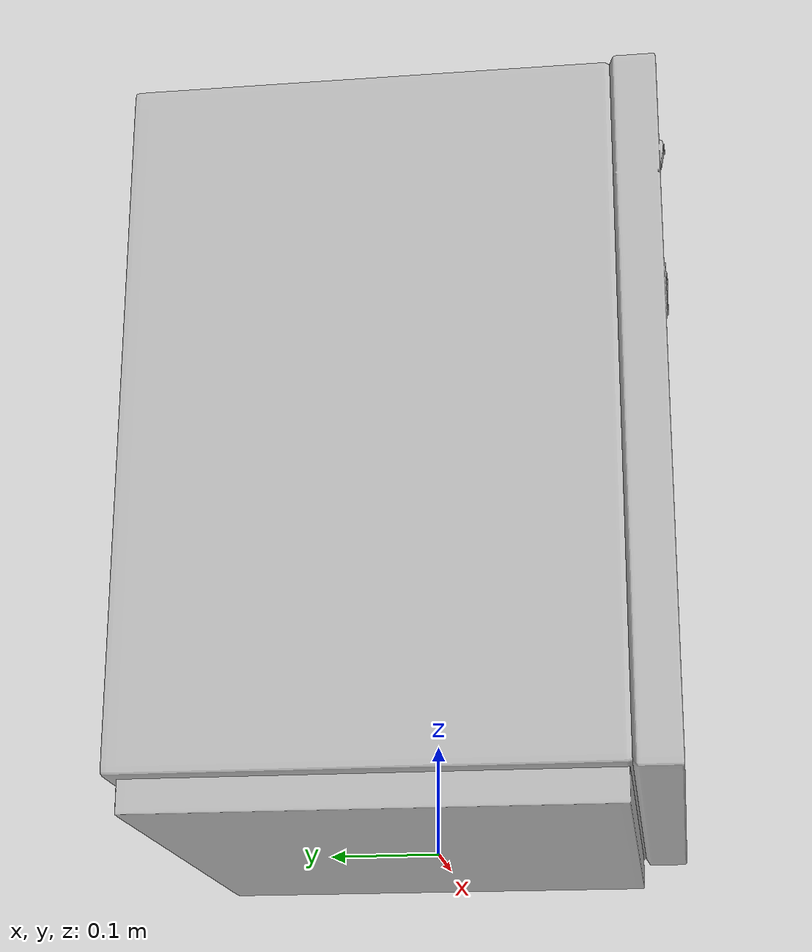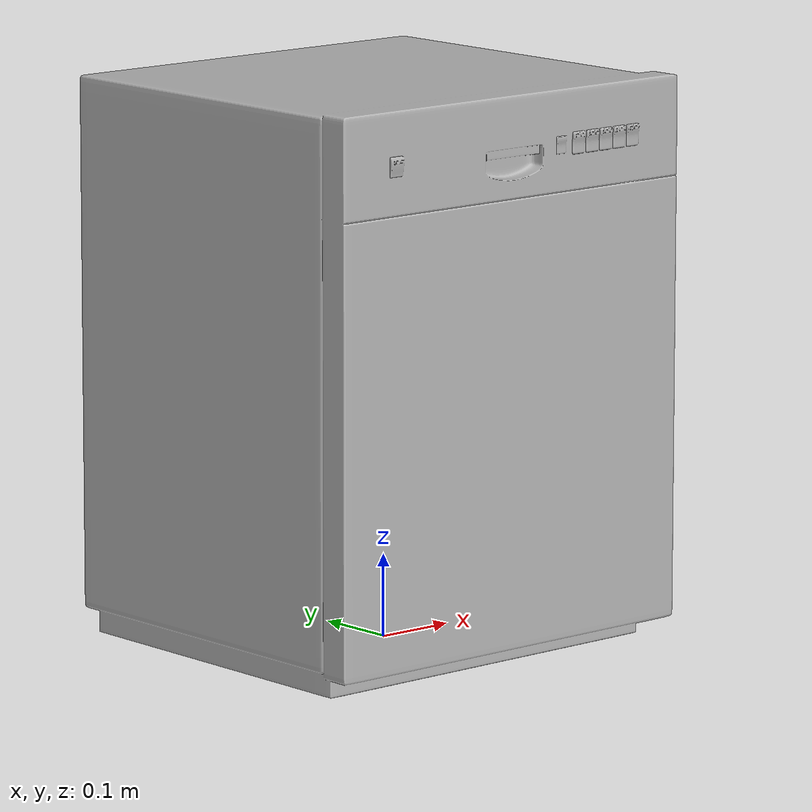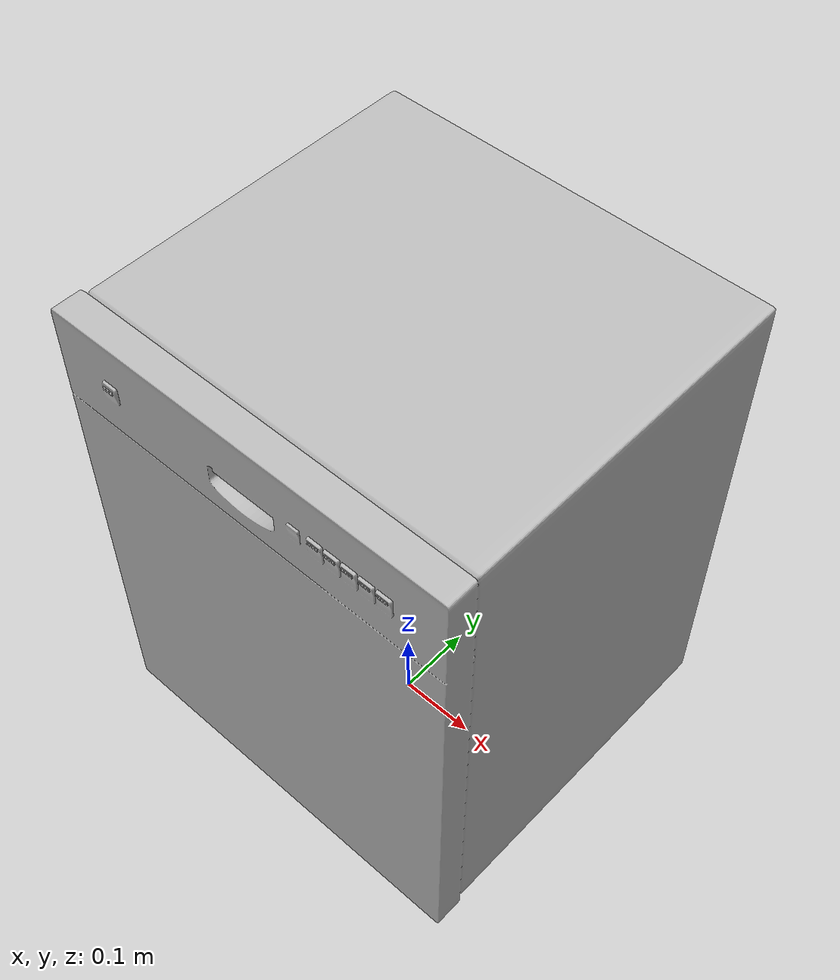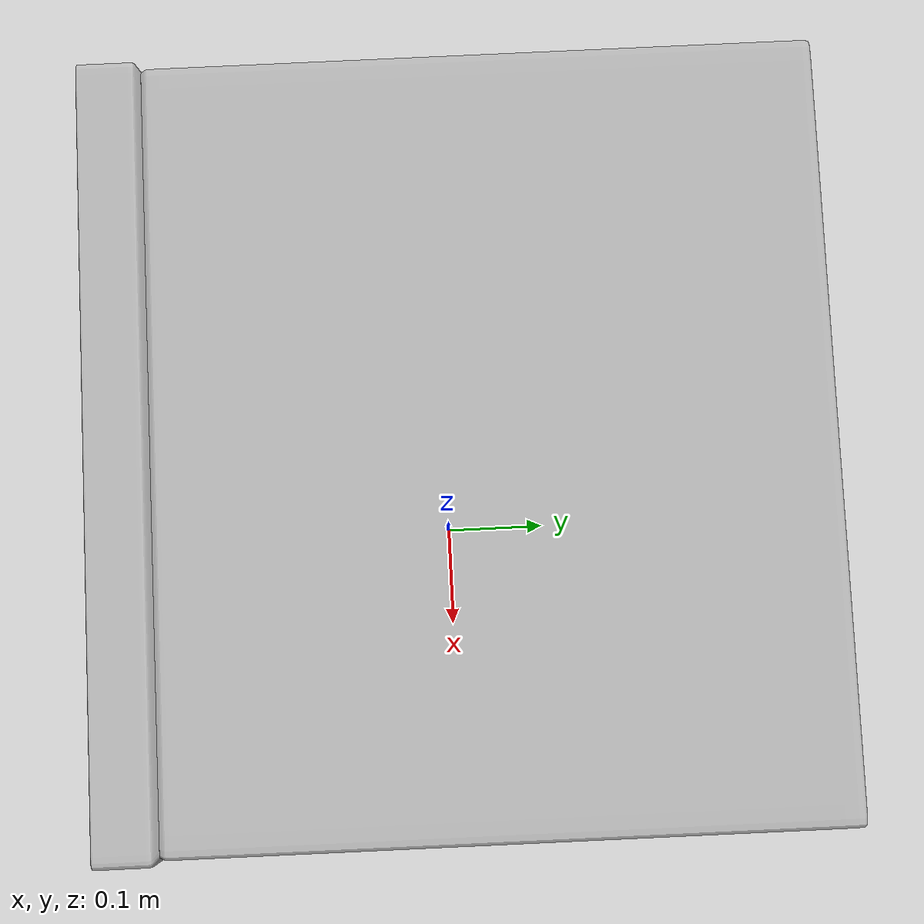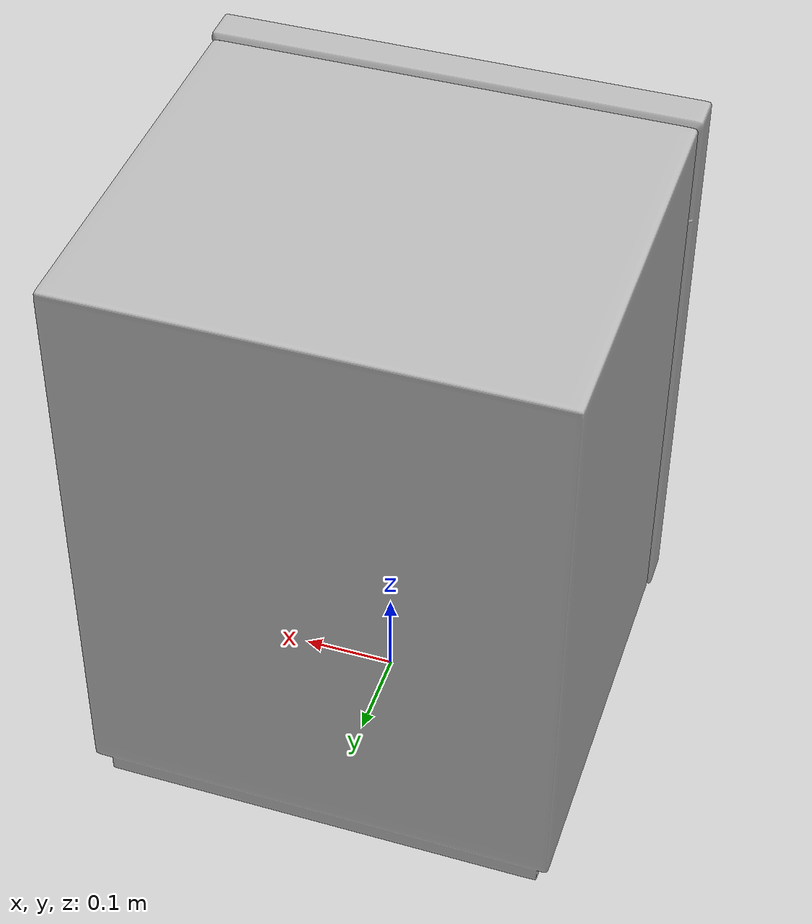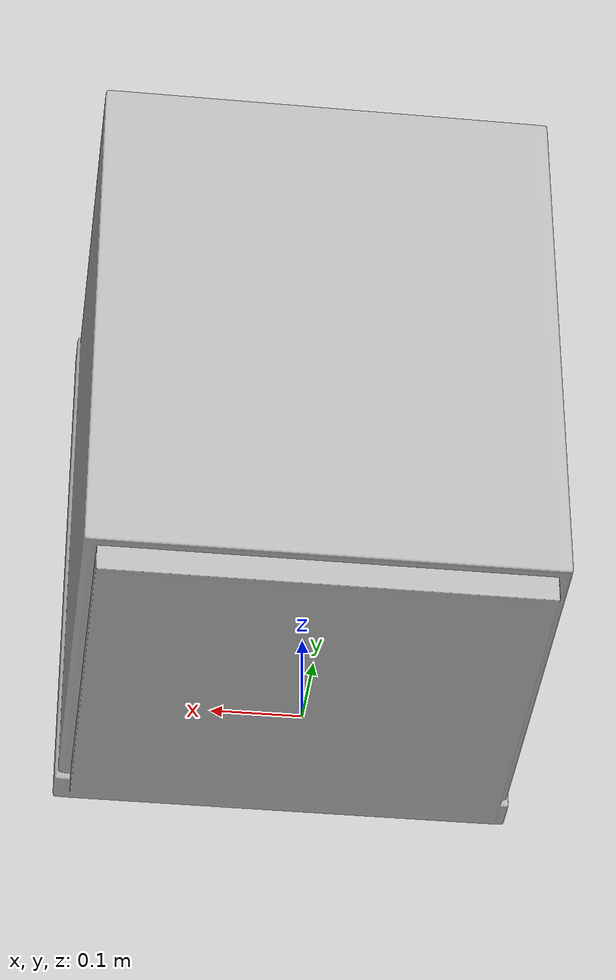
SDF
<?xml version="1.0" ?>
<sdf version="1.7">
  <model name="dishwasher">
    <static>true</static>
    <link name="dishwasherlink">
      <collision name="collision">
        <geometry>
          <mesh>
            <uri>model://dishwasher/meshes/dishwasher.obj</uri>
            <scale> 0.02 0.02 0.02 </scale>
          </mesh>
        </geometry>
      </collision>
      <visual name="visual">
        <geometry>
          <mesh>
            <uri>model://dishwasher/meshes/dishwasher.obj</uri>
            <scale> 0.02 0.02 0.02 </scale>
          </mesh>
        </geometry>
      </visual>
    </link>
  </model>
</sdf>
